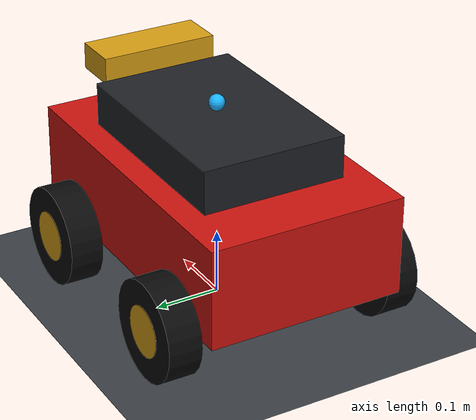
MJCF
<mujoco model="ros_dd_4wheel">
  <compiler angle="radian" autolimits="true"/>
  <option timestep="0.002" gravity="0 0 -9.81" integrator="implicitfast" cone="elliptic"/>

  <default>
    <joint damping="0.12" armature="0.01"/>
    <geom condim="4" friction="1.2 0.01 0.001" solref="0.01 1" solimp="0.9 0.95 0.001"/>
    <velocity kv="3.0" ctrlrange="-40 40" forcerange="-20 20"/>
  </default>

  <asset>
    <texture name="ground_tex" type="2d" builtin="checker" rgb1="0.18 0.20 0.22" rgb2="0.28 0.30 0.32" width="512" height="512"/>
    <material name="ground" texture="ground_tex" texrepeat="8 8" reflectance="0.1"/>
    <material name="body_red" rgba="0.80 0.08 0.06 1"/>
    <material name="body_dark" rgba="0.12 0.13 0.15 1"/>
    <material name="wheel" rgba="0.04 0.04 0.045 1"/>
    <material name="hub" rgba="0.85 0.62 0.08 1"/>
  </asset>

  <worldbody>
    <light pos="0 0 4" dir="0 0 -1" diffuse="0.8 0.8 0.8"/>
    <light pos="-2 -2 2" dir="1 1 -1" diffuse="0.4 0.4 0.4"/>
    <geom name="floor" type="plane" size="8 8 0.1" material="ground"/>

    <body name="base_link" pos="0 0 0.16">
      <freejoint name="base_freejoint"/>
      <geom name="chassis" type="box" size="0.25 0.15 0.075" mass="5.0" material="body_red"/>
      <geom name="deck" type="box" pos="0 0 0.105" size="0.16 0.11 0.035" mass="0.3" material="body_dark"/>
      <geom name="front_marker" type="box" pos="0.205 0 0.15" size="0.035 0.09 0.02" mass="0.05" material="hub"/>
      <site name="imu_site" pos="0 0 0.15" size="0.012" rgba="0.1 0.7 1 1"/>

      <body name="front_left_wheel" pos="0.15 0.175 -0.085">
        <joint name="front_left_wheel_joint" type="hinge" axis="0 1 0"/>
        <geom type="cylinder" size="0.075 0.025" euler="1.57079632679 0 0" mass="0.5" material="wheel"/>
        <geom type="cylinder" size="0.038 0.026" euler="1.57079632679 0 0" mass="0.02" material="hub" contype="0" conaffinity="0"/>
      </body>
      <body name="rear_left_wheel" pos="-0.15 0.175 -0.085">
        <joint name="rear_left_wheel_joint" type="hinge" axis="0 1 0"/>
        <geom type="cylinder" size="0.075 0.025" euler="1.57079632679 0 0" mass="0.5" material="wheel"/>
        <geom type="cylinder" size="0.038 0.026" euler="1.57079632679 0 0" mass="0.02" material="hub" contype="0" conaffinity="0"/>
      </body>
      <body name="front_right_wheel" pos="0.15 -0.175 -0.085">
        <joint name="front_right_wheel_joint" type="hinge" axis="0 1 0"/>
        <geom type="cylinder" size="0.075 0.025" euler="1.57079632679 0 0" mass="0.5" material="wheel"/>
        <geom type="cylinder" size="0.038 0.026" euler="1.57079632679 0 0" mass="0.02" material="hub" contype="0" conaffinity="0"/>
      </body>
      <body name="rear_right_wheel" pos="-0.15 -0.175 -0.085">
        <joint name="rear_right_wheel_joint" type="hinge" axis="0 1 0"/>
        <geom type="cylinder" size="0.075 0.025" euler="1.57079632679 0 0" mass="0.5" material="wheel"/>
        <geom type="cylinder" size="0.038 0.026" euler="1.57079632679 0 0" mass="0.02" material="hub" contype="0" conaffinity="0"/>
      </body>
    </body>
  </worldbody>

  <actuator>
    <velocity name="front_left_motor" joint="front_left_wheel_joint"/>
    <velocity name="rear_left_motor" joint="rear_left_wheel_joint"/>
    <velocity name="front_right_motor" joint="front_right_wheel_joint"/>
    <velocity name="rear_right_motor" joint="rear_right_wheel_joint"/>
  </actuator>

  <sensor>
    <framepos name="base_position" objtype="body" objname="base_link"/>
    <framequat name="base_orientation" objtype="body" objname="base_link"/>
  </sensor>
</mujoco>
